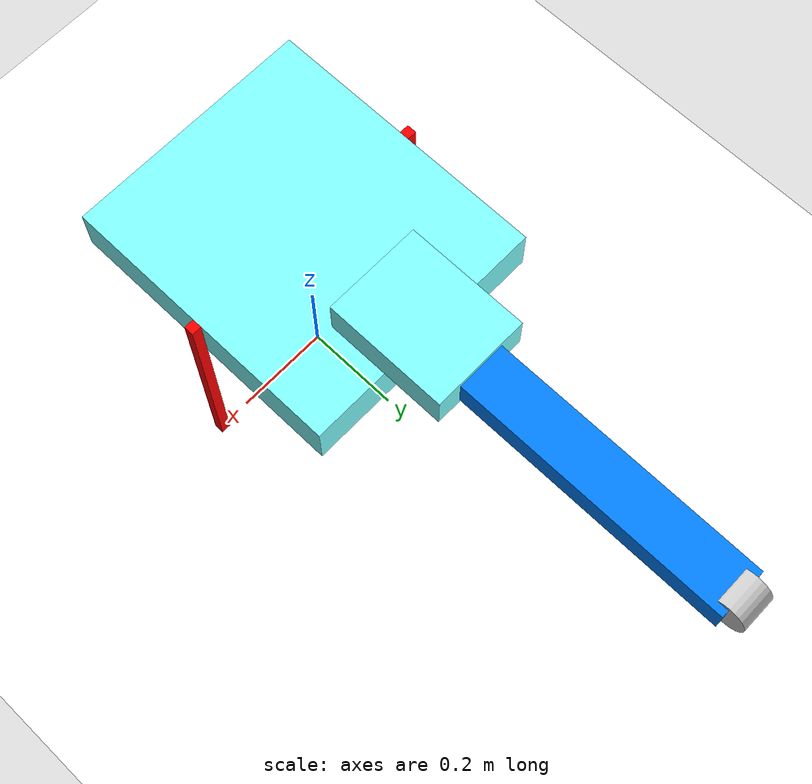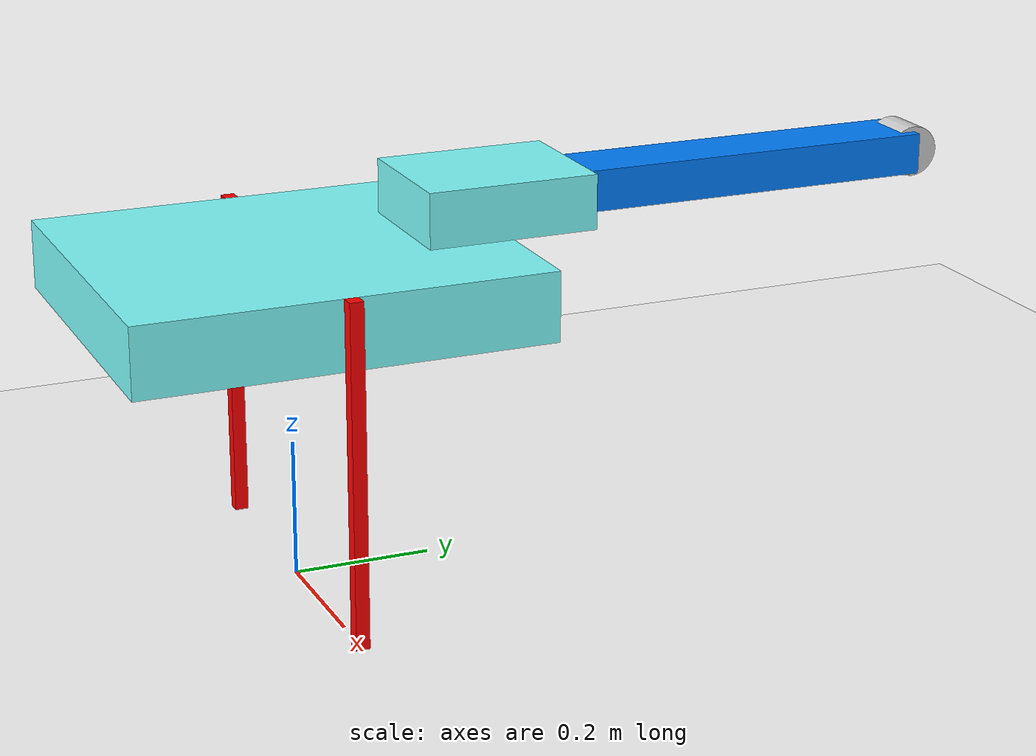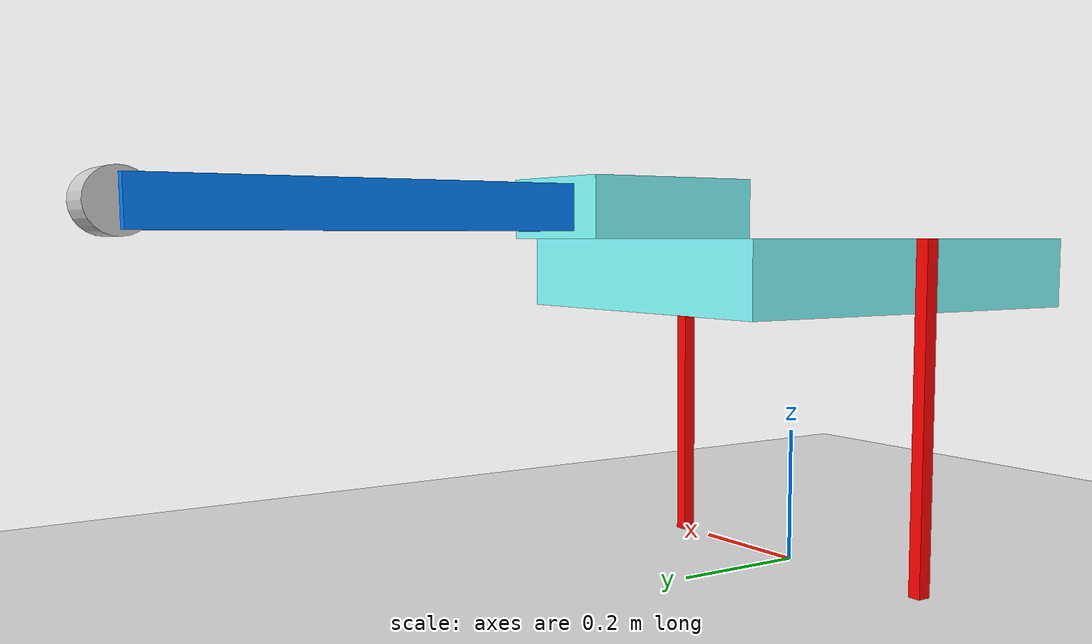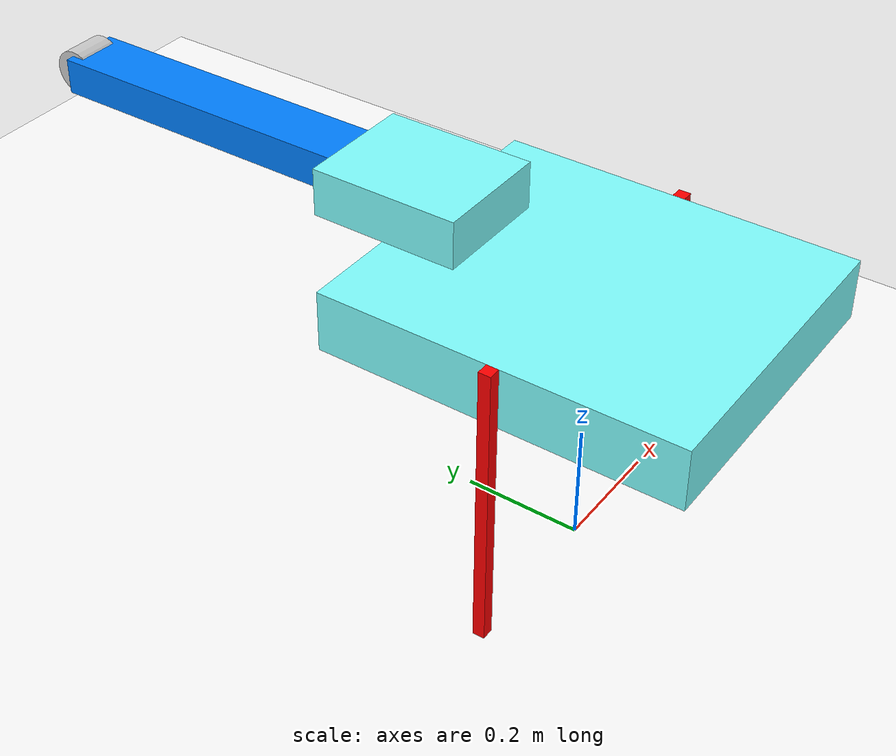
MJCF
<!-- corrected dimensions of TITA and aux wheel -->

<mujoco>
  <option timestep="0.001" />
  <option integrator="RK4" />
  <option gravity="0 0 -9.81" />
  <worldbody>
    <light diffuse=".5 .5 .5" pos="0 0 10" dir="0 0 -1"/>
    <geom type="plane" size="2 2 0.1" rgba="1 1 1 1"/>

    <body pos="0 0 0.49" euler="0 0 180">
        <joint type="free"/>
        <geom type="box" size="0.255 0.295 0.05" pos="0 0 -0.05" rgba="0.5 1 1 1" mass="20" />
        <body pos="0.265 0 -0.24499999">
            <geom type="box" size="0.01 0.01 0.245" rgba="1 0 0 1" mass="3" />
        </body>
        <body pos="-0.265 0 -0.2449999">
            <geom type="box" size="0.01 0.01 0.245" rgba="1 0 0 1" mass="3" />
        </body>
        <body pos="0 -0.42 0.04">
            <geom type="box" size="0.1 0.125 0.04" pos="0 0.125 0" rgba="0.5 1 1 1" />
            <inertial pos="-0.19607e-3 46.342e-3 -0.194e-3" mass="3.223" fullinertia="15831.27513e-6 19077.27233e-6 29841.67249e-6 -55.28381e-6 1.12985e-6 64.85291e-6"/>

            <body name="tail" pos="0 0 0" euler="0 0 0">
                <joint name="tail_motor" type="hinge" axis="-1 0 0" pos="0 0 0" range="-90 90" damping="5.0"/>
                <inertial pos="-0.034e-3 -181.115e-3 50.557e-3" mass="8.119" fullinertia="307756.70501e-6 54232.56425e-6 277092.6789e-6 63.41861e-6 0.90748e-6 -44809.88172e-6"/>
                <geom type="box" size="0.05 0.2747 0.03" pos="0 -0.2747 0" rgba="0 0.5 1 1" />
                <body pos="0 -0.5494 0" euler="0 90 0" >
                    <joint type="hinge" />
                    <geom type="cylinder" size="0.0375 0.035" rgba="0.8 0.8 0.8 1" mass="0.254" />
                </body>
            </body>

        </body>

    </body>
  </worldbody>

    <actuator>
        <motor joint="tail_motor" name="torque" ctrlrange="-60 60" forcerange="-60 60" gear="1"/>
    </actuator>

</mujoco>
